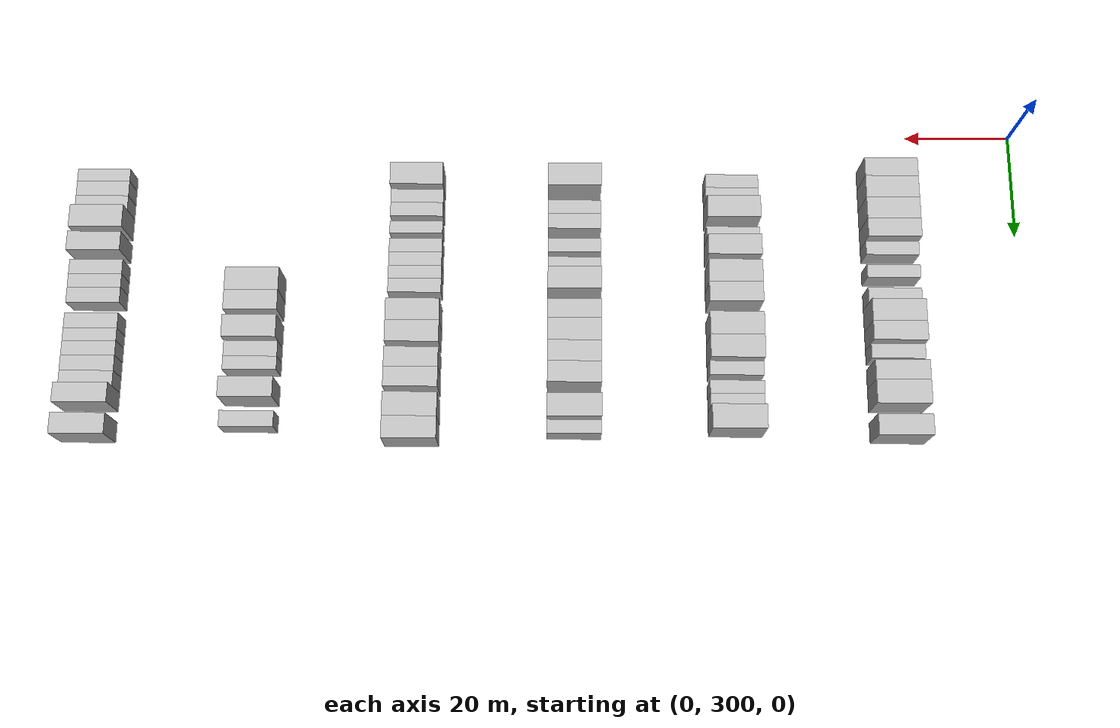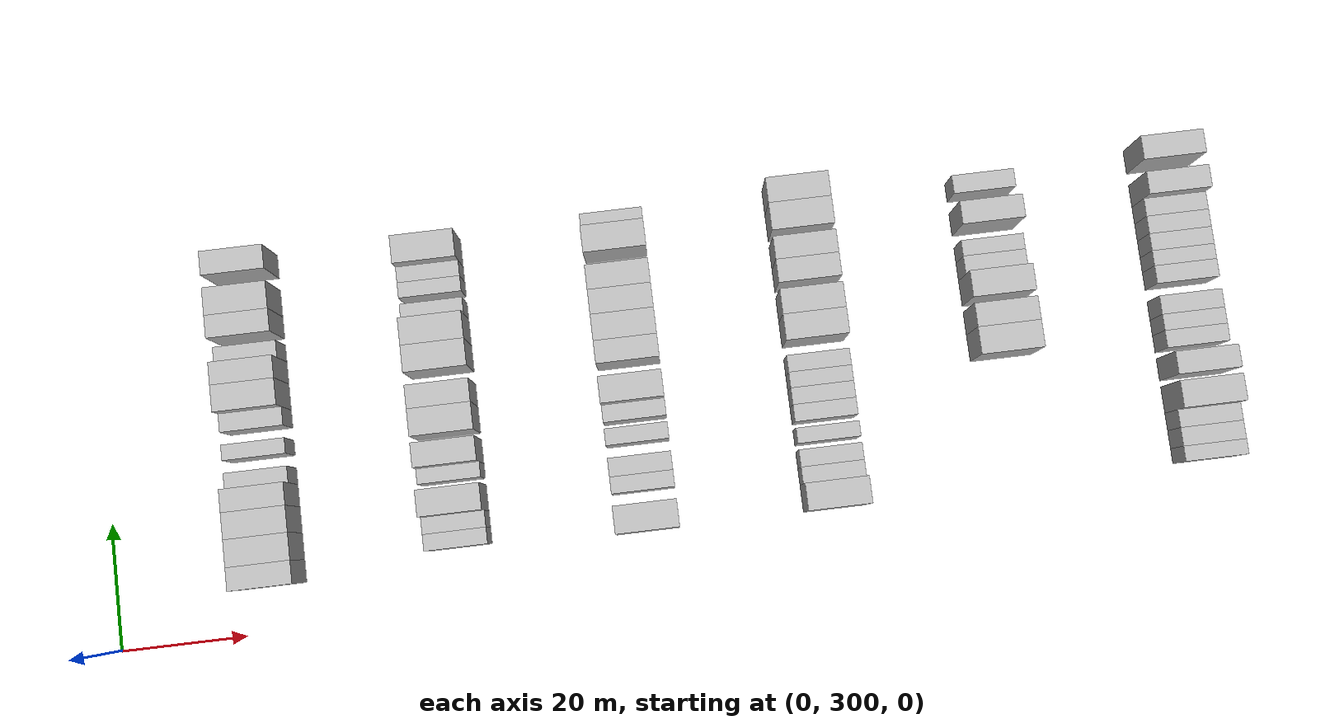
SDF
<sdf version="1.6">
 <world name="default">
  <model name="building_196">
   <static>1</static>
   <pose>25.0000 309.1037 0 0.000000 0.000000 0.000000</pose>
   <link name="link">
    <pose>0 0 4.50 0 0 0</pose>
    <collision name="collision"><geometry><box><size>10.0000 3.6375 9.0000</size></box></geometry></collision>
    <visual name="visual">
     <cast_shadows>0</cast_shadows>
     <geometry><box><size>10.0000 3.6375 9.0000</size></box></geometry>
     <material>
      <script>
       <uri>model://HANNAS_wall/materials/scripts</uri>
       <uri>model://HANNAS_wall/materials/textures</uri>
       <name>vrc/HANNAS_wall</name>
      </script>
     </material>
    </visual>
   </link>
  </model>
  <model name="building_197">
   <static>1</static>
   <pose>25.0000 313.0663 0 0.000000 0.000000 0.000000</pose>
   <link name="link">
    <pose>0 0 4.50 0 0 0</pose>
    <collision name="collision"><geometry><box><size>10.0000 4.2878 9.0000</size></box></geometry></collision>
    <visual name="visual">
     <cast_shadows>0</cast_shadows>
     <geometry><box><size>10.0000 4.2878 9.0000</size></box></geometry>
     <material>
      <script>
       <uri>model://HANNAS_wall/materials/scripts</uri>
       <uri>model://HANNAS_wall/materials/textures</uri>
       <name>vrc/HANNAS_wall</name>
      </script>
     </material>
    </visual>
   </link>
  </model>
  <model name="building_198">
   <static>1</static>
   <pose>25.0000 317.3026 0 0.000000 0.000000 0.000000</pose>
   <link name="link">
    <pose>0 0 4.50 0 0 0</pose>
    <collision name="collision"><geometry><box><size>10.0000 4.1848 9.0000</size></box></geometry></collision>
    <visual name="visual">
     <cast_shadows>0</cast_shadows>
     <geometry><box><size>10.0000 4.1848 9.0000</size></box></geometry>
     <material>
      <script>
       <uri>model://HANNAS_wall/materials/scripts</uri>
       <uri>model://HANNAS_wall/materials/textures</uri>
       <name>vrc/HANNAS_wall</name>
      </script>
     </material>
    </visual>
   </link>
  </model>
  <model name="building_199">
   <static>1</static>
   <pose>25.0000 321.1996 0 0.000000 0.000000 0.000000</pose>
   <link name="link">
    <pose>0 0 4.50 0 0 0</pose>
    <collision name="collision"><geometry><box><size>10.0000 3.6092 9.0000</size></box></geometry></collision>
    <visual name="visual">
     <cast_shadows>0</cast_shadows>
     <geometry><box><size>10.0000 3.6092 9.0000</size></box></geometry>
     <material>
      <script>
       <uri>model://HANNAS_wall/materials/scripts</uri>
       <uri>model://HANNAS_wall/materials/textures</uri>
       <name>vrc/HANNAS_wall</name>
      </script>
     </material>
    </visual>
   </link>
  </model>
  <model name="building_200">
   <static>1</static>
   <pose>25.0000 324.3306 0 0.000000 0.000000 0.000000</pose>
   <link name="link">
    <pose>0 0 3.00 0 0 0</pose>
    <collision name="collision"><geometry><box><size>10.0000 2.6528 6.0000</size></box></geometry></collision>
    <visual name="visual">
     <cast_shadows>0</cast_shadows>
     <geometry><box><size>10.0000 2.6528 6.0000</size></box></geometry>
     <material>
      <script>
       <uri>model://HANNAS_wall/materials/scripts</uri>
       <uri>model://HANNAS_wall/materials/textures</uri>
       <name>vrc/HANNAS_wall</name>
      </script>
     </material>
    </visual>
   </link>
  </model>
  <model name="building_201">
   <static>1</static>
   <pose>25.0000 328.8952 0 0.000000 0.000000 0.000000</pose>
   <link name="link">
    <pose>0 0 3.00 0 0 0</pose>
    <collision name="collision"><geometry><box><size>10.0000 2.4763 6.0000</size></box></geometry></collision>
    <visual name="visual">
     <cast_shadows>0</cast_shadows>
     <geometry><box><size>10.0000 2.4763 6.0000</size></box></geometry>
     <material>
      <script>
       <uri>model://HANNAS_wall/materials/scripts</uri>
       <uri>model://HANNAS_wall/materials/textures</uri>
       <name>vrc/HANNAS_wall</name>
      </script>
     </material>
    </visual>
   </link>
  </model>
  <model name="building_202">
   <static>1</static>
   <pose>25.0000 333.6020 0 0.000000 0.000000 0.000000</pose>
   <link name="link">
    <pose>0 0 3.00 0 0 0</pose>
    <collision name="collision"><geometry><box><size>10.0000 2.9375 6.0000</size></box></geometry></collision>
    <visual name="visual">
     <cast_shadows>0</cast_shadows>
     <geometry><box><size>10.0000 2.9375 6.0000</size></box></geometry>
     <material>
      <script>
       <uri>model://HANNAS_wall/materials/scripts</uri>
       <uri>model://HANNAS_wall/materials/textures</uri>
       <name>vrc/HANNAS_wall</name>
      </script>
     </material>
    </visual>
   </link>
  </model>
  <model name="building_203">
   <static>1</static>
   <pose>25.0000 337.1969 0 0.000000 0.000000 0.000000</pose>
   <link name="link">
    <pose>0 0 4.50 0 0 0</pose>
    <collision name="collision"><geometry><box><size>10.0000 4.2523 9.0000</size></box></geometry></collision>
    <visual name="visual">
     <cast_shadows>0</cast_shadows>
     <geometry><box><size>10.0000 4.2523 9.0000</size></box></geometry>
     <material>
      <script>
       <uri>model://HANNAS_wall/materials/scripts</uri>
       <uri>model://HANNAS_wall/materials/textures</uri>
       <name>vrc/HANNAS_wall</name>
      </script>
     </material>
    </visual>
   </link>
  </model>
  <model name="building_204">
   <static>1</static>
   <pose>25.0000 341.1287 0 0.000000 0.000000 0.000000</pose>
   <link name="link">
    <pose>0 0 4.50 0 0 0</pose>
    <collision name="collision"><geometry><box><size>10.0000 3.6112 9.0000</size></box></geometry></collision>
    <visual name="visual">
     <cast_shadows>0</cast_shadows>
     <geometry><box><size>10.0000 3.6112 9.0000</size></box></geometry>
     <material>
      <script>
       <uri>model://HANNAS_wall/materials/scripts</uri>
       <uri>model://HANNAS_wall/materials/textures</uri>
       <name>vrc/HANNAS_wall</name>
      </script>
     </material>
    </visual>
   </link>
  </model>
  <model name="building_205">
   <static>1</static>
   <pose>25.0000 344.3310 0 0.000000 0.000000 0.000000</pose>
   <link name="link">
    <pose>0 0 3.00 0 0 0</pose>
    <collision name="collision"><geometry><box><size>10.0000 2.7935 6.0000</size></box></geometry></collision>
    <visual name="visual">
     <cast_shadows>0</cast_shadows>
     <geometry><box><size>10.0000 2.7935 6.0000</size></box></geometry>
     <material>
      <script>
       <uri>model://HANNAS_wall/materials/scripts</uri>
       <uri>model://HANNAS_wall/materials/textures</uri>
       <name>vrc/HANNAS_wall</name>
      </script>
     </material>
    </visual>
   </link>
  </model>
  <model name="building_206">
   <static>1</static>
   <pose>25.0000 348.5507 0 0.000000 0.000000 0.000000</pose>
   <link name="link">
    <pose>0 0 4.50 0 0 0</pose>
    <collision name="collision"><geometry><box><size>10.0000 3.6458 9.0000</size></box></geometry></collision>
    <visual name="visual">
     <cast_shadows>0</cast_shadows>
     <geometry><box><size>10.0000 3.6458 9.0000</size></box></geometry>
     <material>
      <script>
       <uri>model://HANNAS_wall/materials/scripts</uri>
       <uri>model://HANNAS_wall/materials/textures</uri>
       <name>vrc/HANNAS_wall</name>
      </script>
     </material>
    </visual>
   </link>
  </model>
  <model name="building_207">
   <static>1</static>
   <pose>25.0000 352.5800 0 0.000000 0.000000 0.000000</pose>
   <link name="link">
    <pose>0 0 4.50 0 0 0</pose>
    <collision name="collision"><geometry><box><size>10.0000 4.4128 9.0000</size></box></geometry></collision>
    <visual name="visual">
     <cast_shadows>0</cast_shadows>
     <geometry><box><size>10.0000 4.4128 9.0000</size></box></geometry>
     <material>
      <script>
       <uri>model://HANNAS_wall/materials/scripts</uri>
       <uri>model://HANNAS_wall/materials/textures</uri>
       <name>vrc/HANNAS_wall</name>
      </script>
     </material>
    </visual>
   </link>
  </model>
  <model name="building_208">
   <static>1</static>
   <pose>25.0000 358.7078 0 0.000000 0.000000 0.000000</pose>
   <link name="link">
    <pose>0 0 4.50 0 0 0</pose>
    <collision name="collision"><geometry><box><size>10.0000 3.8427 9.0000</size></box></geometry></collision>
    <visual name="visual">
     <cast_shadows>0</cast_shadows>
     <geometry><box><size>10.0000 3.8427 9.0000</size></box></geometry>
     <material>
      <script>
       <uri>model://HANNAS_wall/materials/scripts</uri>
       <uri>model://HANNAS_wall/materials/textures</uri>
       <name>vrc/HANNAS_wall</name>
      </script>
     </material>
    </visual>
   </link>
  </model>
  <model name="building_415">
   <static>1</static>
   <pose>55.0000 311.1469 0 0.000000 0.000000 0.000000</pose>
   <link name="link">
    <pose>0 0 3.00 0 0 0</pose>
    <collision name="collision"><geometry><box><size>10.0000 2.6119 6.0000</size></box></geometry></collision>
    <visual name="visual">
     <cast_shadows>0</cast_shadows>
     <geometry><box><size>10.0000 2.6119 6.0000</size></box></geometry>
     <material>
      <script>
       <uri>model://HANNAS_wall/materials/scripts</uri>
       <uri>model://HANNAS_wall/materials/textures</uri>
       <name>vrc/HANNAS_wall</name>
      </script>
     </material>
    </visual>
   </link>
  </model>
  <model name="building_416">
   <static>1</static>
   <pose>55.0000 313.7734 0 0.000000 0.000000 0.000000</pose>
   <link name="link">
    <pose>0 0 3.00 0 0 0</pose>
    <collision name="collision"><geometry><box><size>10.0000 2.6413 6.0000</size></box></geometry></collision>
    <visual name="visual">
     <cast_shadows>0</cast_shadows>
     <geometry><box><size>10.0000 2.6413 6.0000</size></box></geometry>
     <material>
      <script>
       <uri>model://HANNAS_wall/materials/scripts</uri>
       <uri>model://HANNAS_wall/materials/textures</uri>
       <name>vrc/HANNAS_wall</name>
      </script>
     </material>
    </visual>
   </link>
  </model>
  <model name="building_417">
   <static>1</static>
   <pose>55.0000 317.2014 0 0.000000 0.000000 0.000000</pose>
   <link name="link">
    <pose>0 0 4.50 0 0 0</pose>
    <collision name="collision"><geometry><box><size>10.0000 4.2146 9.0000</size></box></geometry></collision>
    <visual name="visual">
     <cast_shadows>0</cast_shadows>
     <geometry><box><size>10.0000 4.2146 9.0000</size></box></geometry>
     <material>
      <script>
       <uri>model://HANNAS_wall/materials/scripts</uri>
       <uri>model://HANNAS_wall/materials/textures</uri>
       <name>vrc/HANNAS_wall</name>
      </script>
     </material>
    </visual>
   </link>
  </model>
  <model name="building_418">
   <static>1</static>
   <pose>55.0000 321.5330 0 0.000000 0.000000 0.000000</pose>
   <link name="link">
    <pose>0 0 3.00 0 0 0</pose>
    <collision name="collision"><geometry><box><size>10.0000 2.4486 6.0000</size></box></geometry></collision>
    <visual name="visual">
     <cast_shadows>0</cast_shadows>
     <geometry><box><size>10.0000 2.4486 6.0000</size></box></geometry>
     <material>
      <script>
       <uri>model://HANNAS_wall/materials/scripts</uri>
       <uri>model://HANNAS_wall/materials/textures</uri>
       <name>vrc/HANNAS_wall</name>
      </script>
     </material>
    </visual>
   </link>
  </model>
  <model name="building_419">
   <static>1</static>
   <pose>55.0000 324.7034 0 0.000000 0.000000 0.000000</pose>
   <link name="link">
    <pose>0 0 4.50 0 0 0</pose>
    <collision name="collision"><geometry><box><size>10.0000 3.8923 9.0000</size></box></geometry></collision>
    <visual name="visual">
     <cast_shadows>0</cast_shadows>
     <geometry><box><size>10.0000 3.8923 9.0000</size></box></geometry>
     <material>
      <script>
       <uri>model://HANNAS_wall/materials/scripts</uri>
       <uri>model://HANNAS_wall/materials/textures</uri>
       <name>vrc/HANNAS_wall</name>
      </script>
     </material>
    </visual>
   </link>
  </model>
  <model name="building_420">
   <static>1</static>
   <pose>55.0000 329.8168 0 0.000000 0.000000 0.000000</pose>
   <link name="link">
    <pose>0 0 4.50 0 0 0</pose>
    <collision name="collision"><geometry><box><size>10.0000 4.3344 9.0000</size></box></geometry></collision>
    <visual name="visual">
     <cast_shadows>0</cast_shadows>
     <geometry><box><size>10.0000 4.3344 9.0000</size></box></geometry>
     <material>
      <script>
       <uri>model://HANNAS_wall/materials/scripts</uri>
       <uri>model://HANNAS_wall/materials/textures</uri>
       <name>vrc/HANNAS_wall</name>
      </script>
     </material>
    </visual>
   </link>
  </model>
  <model name="building_421">
   <static>1</static>
   <pose>55.0000 333.8455 0 0.000000 0.000000 0.000000</pose>
   <link name="link">
    <pose>0 0 4.50 0 0 0</pose>
    <collision name="collision"><geometry><box><size>10.0000 3.7230 9.0000</size></box></geometry></collision>
    <visual name="visual">
     <cast_shadows>0</cast_shadows>
     <geometry><box><size>10.0000 3.7230 9.0000</size></box></geometry>
     <material>
      <script>
       <uri>model://HANNAS_wall/materials/scripts</uri>
       <uri>model://HANNAS_wall/materials/textures</uri>
       <name>vrc/HANNAS_wall</name>
      </script>
     </material>
    </visual>
   </link>
  </model>
  <model name="building_422">
   <static>1</static>
   <pose>55.0000 339.8647 0 0.000000 0.000000 0.000000</pose>
   <link name="link">
    <pose>0 0 4.50 0 0 0</pose>
    <collision name="collision"><geometry><box><size>10.0000 4.3155 9.0000</size></box></geometry></collision>
    <visual name="visual">
     <cast_shadows>0</cast_shadows>
     <geometry><box><size>10.0000 4.3155 9.0000</size></box></geometry>
     <material>
      <script>
       <uri>model://HANNAS_wall/materials/scripts</uri>
       <uri>model://HANNAS_wall/materials/textures</uri>
       <name>vrc/HANNAS_wall</name>
      </script>
     </material>
    </visual>
   </link>
  </model>
  <model name="building_423">
   <static>1</static>
   <pose>55.0000 344.2109 0 0.000000 0.000000 0.000000</pose>
   <link name="link">
    <pose>0 0 4.50 0 0 0</pose>
    <collision name="collision"><geometry><box><size>10.0000 4.3768 9.0000</size></box></geometry></collision>
    <visual name="visual">
     <cast_shadows>0</cast_shadows>
     <geometry><box><size>10.0000 4.3768 9.0000</size></box></geometry>
     <material>
      <script>
       <uri>model://HANNAS_wall/materials/scripts</uri>
       <uri>model://HANNAS_wall/materials/textures</uri>
       <name>vrc/HANNAS_wall</name>
      </script>
     </material>
    </visual>
   </link>
  </model>
  <model name="building_424">
   <static>1</static>
   <pose>55.0000 347.7344 0 0.000000 0.000000 0.000000</pose>
   <link name="link">
    <pose>0 0 3.00 0 0 0</pose>
    <collision name="collision"><geometry><box><size>10.0000 2.6702 6.0000</size></box></geometry></collision>
    <visual name="visual">
     <cast_shadows>0</cast_shadows>
     <geometry><box><size>10.0000 2.6702 6.0000</size></box></geometry>
     <material>
      <script>
       <uri>model://HANNAS_wall/materials/scripts</uri>
       <uri>model://HANNAS_wall/materials/textures</uri>
       <name>vrc/HANNAS_wall</name>
      </script>
     </material>
    </visual>
   </link>
  </model>
  <model name="building_425">
   <static>1</static>
   <pose>55.0000 351.3104 0 0.000000 0.000000 0.000000</pose>
   <link name="link">
    <pose>0 0 3.00 0 0 0</pose>
    <collision name="collision"><geometry><box><size>10.0000 2.4818 6.0000</size></box></geometry></collision>
    <visual name="visual">
     <cast_shadows>0</cast_shadows>
     <geometry><box><size>10.0000 2.4818 6.0000</size></box></geometry>
     <material>
      <script>
       <uri>model://HANNAS_wall/materials/scripts</uri>
       <uri>model://HANNAS_wall/materials/textures</uri>
       <name>vrc/HANNAS_wall</name>
      </script>
     </material>
    </visual>
   </link>
  </model>
  <model name="building_426">
   <static>1</static>
   <pose>55.0000 353.8293 0 0.000000 0.000000 0.000000</pose>
   <link name="link">
    <pose>0 0 3.00 0 0 0</pose>
    <collision name="collision"><geometry><box><size>10.0000 2.5561 6.0000</size></box></geometry></collision>
    <visual name="visual">
     <cast_shadows>0</cast_shadows>
     <geometry><box><size>10.0000 2.5561 6.0000</size></box></geometry>
     <material>
      <script>
       <uri>model://HANNAS_wall/materials/scripts</uri>
       <uri>model://HANNAS_wall/materials/textures</uri>
       <name>vrc/HANNAS_wall</name>
      </script>
     </material>
    </visual>
   </link>
  </model>
  <model name="building_427">
   <static>1</static>
   <pose>55.0000 357.3418 0 0.000000 0.000000 0.000000</pose>
   <link name="link">
    <pose>0 0 4.50 0 0 0</pose>
    <collision name="collision"><geometry><box><size>10.0000 4.4689 9.0000</size></box></geometry></collision>
    <visual name="visual">
     <cast_shadows>0</cast_shadows>
     <geometry><box><size>10.0000 4.4689 9.0000</size></box></geometry>
     <material>
      <script>
       <uri>model://HANNAS_wall/materials/scripts</uri>
       <uri>model://HANNAS_wall/materials/textures</uri>
       <name>vrc/HANNAS_wall</name>
      </script>
     </material>
    </visual>
   </link>
  </model>
  <model name="building_638">
   <static>1</static>
   <pose>85.0000 311.0110 0 0.000000 0.000000 0.000000</pose>
   <link name="link">
    <pose>0 0 4.50 0 0 0</pose>
    <collision name="collision"><geometry><box><size>10.0000 4.3673 9.0000</size></box></geometry></collision>
    <visual name="visual">
     <cast_shadows>0</cast_shadows>
     <geometry><box><size>10.0000 4.3673 9.0000</size></box></geometry>
     <material>
      <script>
       <uri>model://HANNAS_wall/materials/scripts</uri>
       <uri>model://HANNAS_wall/materials/textures</uri>
       <name>vrc/HANNAS_wall</name>
      </script>
     </material>
    </visual>
   </link>
  </model>
  <model name="building_639">
   <static>1</static>
   <pose>85.0000 316.5283 0 0.000000 0.000000 0.000000</pose>
   <link name="link">
    <pose>0 0 3.00 0 0 0</pose>
    <collision name="collision"><geometry><box><size>10.0000 2.6672 6.0000</size></box></geometry></collision>
    <visual name="visual">
     <cast_shadows>0</cast_shadows>
     <geometry><box><size>10.0000 2.6672 6.0000</size></box></geometry>
     <material>
      <script>
       <uri>model://HANNAS_wall/materials/scripts</uri>
       <uri>model://HANNAS_wall/materials/textures</uri>
       <name>vrc/HANNAS_wall</name>
      </script>
     </material>
    </visual>
   </link>
  </model>
  <model name="building_640">
   <static>1</static>
   <pose>85.0000 319.3429 0 0.000000 0.000000 0.000000</pose>
   <link name="link">
    <pose>0 0 3.00 0 0 0</pose>
    <collision name="collision"><geometry><box><size>10.0000 2.9620 6.0000</size></box></geometry></collision>
    <visual name="visual">
     <cast_shadows>0</cast_shadows>
     <geometry><box><size>10.0000 2.9620 6.0000</size></box></geometry>
     <material>
      <script>
       <uri>model://HANNAS_wall/materials/scripts</uri>
       <uri>model://HANNAS_wall/materials/textures</uri>
       <name>vrc/HANNAS_wall</name>
      </script>
     </material>
    </visual>
   </link>
  </model>
  <model name="building_641">
   <static>1</static>
   <pose>85.0000 324.1539 0 0.000000 0.000000 0.000000</pose>
   <link name="link">
    <pose>0 0 3.00 0 0 0</pose>
    <collision name="collision"><geometry><box><size>10.0000 2.6599 6.0000</size></box></geometry></collision>
    <visual name="visual">
     <cast_shadows>0</cast_shadows>
     <geometry><box><size>10.0000 2.6599 6.0000</size></box></geometry>
     <material>
      <script>
       <uri>model://HANNAS_wall/materials/scripts</uri>
       <uri>model://HANNAS_wall/materials/textures</uri>
       <name>vrc/HANNAS_wall</name>
      </script>
     </material>
    </visual>
   </link>
  </model>
  <model name="building_642">
   <static>1</static>
   <pose>85.0000 327.8646 0 0.000000 0.000000 0.000000</pose>
   <link name="link">
    <pose>0 0 3.00 0 0 0</pose>
    <collision name="collision"><geometry><box><size>10.0000 2.7614 6.0000</size></box></geometry></collision>
    <visual name="visual">
     <cast_shadows>0</cast_shadows>
     <geometry><box><size>10.0000 2.7614 6.0000</size></box></geometry>
     <material>
      <script>
       <uri>model://HANNAS_wall/materials/scripts</uri>
       <uri>model://HANNAS_wall/materials/textures</uri>
       <name>vrc/HANNAS_wall</name>
      </script>
     </material>
    </visual>
   </link>
  </model>
  <model name="building_643">
   <static>1</static>
   <pose>85.0000 331.3703 0 0.000000 0.000000 0.000000</pose>
   <link name="link">
    <pose>0 0 4.50 0 0 0</pose>
    <collision name="collision"><geometry><box><size>10.0000 4.2501 9.0000</size></box></geometry></collision>
    <visual name="visual">
     <cast_shadows>0</cast_shadows>
     <geometry><box><size>10.0000 4.2501 9.0000</size></box></geometry>
     <material>
      <script>
       <uri>model://HANNAS_wall/materials/scripts</uri>
       <uri>model://HANNAS_wall/materials/textures</uri>
       <name>vrc/HANNAS_wall</name>
      </script>
     </material>
    </visual>
   </link>
  </model>
  <model name="building_644">
   <static>1</static>
   <pose>85.0000 337.3200 0 0.000000 0.000000 0.000000</pose>
   <link name="link">
    <pose>0 0 4.50 0 0 0</pose>
    <collision name="collision"><geometry><box><size>10.0000 3.6491 9.0000</size></box></geometry></collision>
    <visual name="visual">
     <cast_shadows>0</cast_shadows>
     <geometry><box><size>10.0000 3.6491 9.0000</size></box></geometry>
     <material>
      <script>
       <uri>model://HANNAS_wall/materials/scripts</uri>
       <uri>model://HANNAS_wall/materials/textures</uri>
       <name>vrc/HANNAS_wall</name>
      </script>
     </material>
    </visual>
   </link>
  </model>
  <model name="building_645">
   <static>1</static>
   <pose>85.0000 341.2414 0 0.000000 0.000000 0.000000</pose>
   <link name="link">
    <pose>0 0 4.50 0 0 0</pose>
    <collision name="collision"><geometry><box><size>10.0000 4.1939 9.0000</size></box></geometry></collision>
    <visual name="visual">
     <cast_shadows>0</cast_shadows>
     <geometry><box><size>10.0000 4.1939 9.0000</size></box></geometry>
     <material>
      <script>
       <uri>model://HANNAS_wall/materials/scripts</uri>
       <uri>model://HANNAS_wall/materials/textures</uri>
       <name>vrc/HANNAS_wall</name>
      </script>
     </material>
    </visual>
   </link>
  </model>
  <model name="building_646">
   <static>1</static>
   <pose>85.0000 345.3181 0 0.000000 0.000000 0.000000</pose>
   <link name="link">
    <pose>0 0 4.50 0 0 0</pose>
    <collision name="collision"><geometry><box><size>10.0000 3.9594 9.0000</size></box></geometry></collision>
    <visual name="visual">
     <cast_shadows>0</cast_shadows>
     <geometry><box><size>10.0000 3.9594 9.0000</size></box></geometry>
     <material>
      <script>
       <uri>model://HANNAS_wall/materials/scripts</uri>
       <uri>model://HANNAS_wall/materials/textures</uri>
       <name>vrc/HANNAS_wall</name>
      </script>
     </material>
    </visual>
   </link>
  </model>
  <model name="building_647">
   <static>1</static>
   <pose>85.0000 349.2757 0 0.000000 0.000000 0.000000</pose>
   <link name="link">
    <pose>0 0 4.50 0 0 0</pose>
    <collision name="collision"><geometry><box><size>10.0000 3.9559 9.0000</size></box></geometry></collision>
    <visual name="visual">
     <cast_shadows>0</cast_shadows>
     <geometry><box><size>10.0000 3.9559 9.0000</size></box></geometry>
     <material>
      <script>
       <uri>model://HANNAS_wall/materials/scripts</uri>
       <uri>model://HANNAS_wall/materials/textures</uri>
       <name>vrc/HANNAS_wall</name>
      </script>
     </material>
    </visual>
   </link>
  </model>
  <model name="building_648">
   <static>1</static>
   <pose>85.0000 355.4358 0 0.000000 0.000000 0.000000</pose>
   <link name="link">
    <pose>0 0 4.50 0 0 0</pose>
    <collision name="collision"><geometry><box><size>10.0000 4.3643 9.0000</size></box></geometry></collision>
    <visual name="visual">
     <cast_shadows>0</cast_shadows>
     <geometry><box><size>10.0000 4.3643 9.0000</size></box></geometry>
     <material>
      <script>
       <uri>model://HANNAS_wall/materials/scripts</uri>
       <uri>model://HANNAS_wall/materials/textures</uri>
       <name>vrc/HANNAS_wall</name>
      </script>
     </material>
    </visual>
   </link>
  </model>
  <model name="building_649">
   <static>1</static>
   <pose>85.0000 358.9013 0 0.000000 0.000000 0.000000</pose>
   <link name="link">
    <pose>0 0 3.00 0 0 0</pose>
    <collision name="collision"><geometry><box><size>10.0000 2.5667 6.0000</size></box></geometry></collision>
    <visual name="visual">
     <cast_shadows>0</cast_shadows>
     <geometry><box><size>10.0000 2.5667 6.0000</size></box></geometry>
     <material>
      <script>
       <uri>model://HANNAS_wall/materials/scripts</uri>
       <uri>model://HANNAS_wall/materials/textures</uri>
       <name>vrc/HANNAS_wall</name>
      </script>
     </material>
    </visual>
   </link>
  </model>
  <model name="building_862">
   <static>1</static>
   <pose>115.0000 311.0098 0 0.000000 0.000000 0.000000</pose>
   <link name="link">
    <pose>0 0 4.50 0 0 0</pose>
    <collision name="collision"><geometry><box><size>10.0000 4.2972 9.0000</size></box></geometry></collision>
    <visual name="visual">
     <cast_shadows>0</cast_shadows>
     <geometry><box><size>10.0000 4.2972 9.0000</size></box></geometry>
     <material>
      <script>
       <uri>model://HANNAS_wall/materials/scripts</uri>
       <uri>model://HANNAS_wall/materials/textures</uri>
       <name>vrc/HANNAS_wall</name>
      </script>
     </material>
    </visual>
   </link>
  </model>
  <model name="building_863">
   <static>1</static>
   <pose>115.0000 314.5016 0 0.000000 0.000000 0.000000</pose>
   <link name="link">
    <pose>0 0 3.00 0 0 0</pose>
    <collision name="collision"><geometry><box><size>10.0000 2.6865 6.0000</size></box></geometry></collision>
    <visual name="visual">
     <cast_shadows>0</cast_shadows>
     <geometry><box><size>10.0000 2.6865 6.0000</size></box></geometry>
     <material>
      <script>
       <uri>model://HANNAS_wall/materials/scripts</uri>
       <uri>model://HANNAS_wall/materials/textures</uri>
       <name>vrc/HANNAS_wall</name>
      </script>
     </material>
    </visual>
   </link>
  </model>
  <model name="building_864">
   <static>1</static>
   <pose>115.0000 317.2058 0 0.000000 0.000000 0.000000</pose>
   <link name="link">
    <pose>0 0 3.00 0 0 0</pose>
    <collision name="collision"><geometry><box><size>10.0000 2.7219 6.0000</size></box></geometry></collision>
    <visual name="visual">
     <cast_shadows>0</cast_shadows>
     <geometry><box><size>10.0000 2.7219 6.0000</size></box></geometry>
     <material>
      <script>
       <uri>model://HANNAS_wall/materials/scripts</uri>
       <uri>model://HANNAS_wall/materials/textures</uri>
       <name>vrc/HANNAS_wall</name>
      </script>
     </material>
    </visual>
   </link>
  </model>
  <model name="building_865">
   <static>1</static>
   <pose>115.0000 320.7853 0 0.000000 0.000000 0.000000</pose>
   <link name="link">
    <pose>0 0 3.00 0 0 0</pose>
    <collision name="collision"><geometry><box><size>10.0000 2.4371 6.0000</size></box></geometry></collision>
    <visual name="visual">
     <cast_shadows>0</cast_shadows>
     <geometry><box><size>10.0000 2.4371 6.0000</size></box></geometry>
     <material>
      <script>
       <uri>model://HANNAS_wall/materials/scripts</uri>
       <uri>model://HANNAS_wall/materials/textures</uri>
       <name>vrc/HANNAS_wall</name>
      </script>
     </material>
    </visual>
   </link>
  </model>
  <model name="building_866">
   <static>1</static>
   <pose>115.0000 324.3734 0 0.000000 0.000000 0.000000</pose>
   <link name="link">
    <pose>0 0 3.00 0 0 0</pose>
    <collision name="collision"><geometry><box><size>10.0000 2.7392 6.0000</size></box></geometry></collision>
    <visual name="visual">
     <cast_shadows>0</cast_shadows>
     <geometry><box><size>10.0000 2.7392 6.0000</size></box></geometry>
     <material>
      <script>
       <uri>model://HANNAS_wall/materials/scripts</uri>
       <uri>model://HANNAS_wall/materials/textures</uri>
       <name>vrc/HANNAS_wall</name>
      </script>
     </material>
    </visual>
   </link>
  </model>
  <model name="building_867">
   <static>1</static>
   <pose>115.0000 327.0790 0 0.000000 0.000000 0.000000</pose>
   <link name="link">
    <pose>0 0 3.00 0 0 0</pose>
    <collision name="collision"><geometry><box><size>10.0000 2.6720 6.0000</size></box></geometry></collision>
    <visual name="visual">
     <cast_shadows>0</cast_shadows>
     <geometry><box><size>10.0000 2.6720 6.0000</size></box></geometry>
     <material>
      <script>
       <uri>model://HANNAS_wall/materials/scripts</uri>
       <uri>model://HANNAS_wall/materials/textures</uri>
       <name>vrc/HANNAS_wall</name>
      </script>
     </material>
    </visual>
   </link>
  </model>
  <model name="building_868">
   <static>1</static>
   <pose>115.0000 329.6733 0 0.000000 0.000000 0.000000</pose>
   <link name="link">
    <pose>0 0 3.00 0 0 0</pose>
    <collision name="collision"><geometry><box><size>10.0000 2.5166 6.0000</size></box></geometry></collision>
    <visual name="visual">
     <cast_shadows>0</cast_shadows>
     <geometry><box><size>10.0000 2.5166 6.0000</size></box></geometry>
     <material>
      <script>
       <uri>model://HANNAS_wall/materials/scripts</uri>
       <uri>model://HANNAS_wall/materials/textures</uri>
       <name>vrc/HANNAS_wall</name>
      </script>
     </material>
    </visual>
   </link>
  </model>
  <model name="building_869">
   <static>1</static>
   <pose>115.0000 332.2695 0 0.000000 0.000000 0.000000</pose>
   <link name="link">
    <pose>0 0 3.00 0 0 0</pose>
    <collision name="collision"><geometry><box><size>10.0000 2.6759 6.0000</size></box></geometry></collision>
    <visual name="visual">
     <cast_shadows>0</cast_shadows>
     <geometry><box><size>10.0000 2.6759 6.0000</size></box></geometry>
     <material>
      <script>
       <uri>model://HANNAS_wall/materials/scripts</uri>
       <uri>model://HANNAS_wall/materials/textures</uri>
       <name>vrc/HANNAS_wall</name>
      </script>
     </material>
    </visual>
   </link>
  </model>
  <model name="building_870">
   <static>1</static>
   <pose>115.0000 337.6904 0 0.000000 0.000000 0.000000</pose>
   <link name="link">
    <pose>0 0 4.50 0 0 0</pose>
    <collision name="collision"><geometry><box><size>10.0000 4.1659 9.0000</size></box></geometry></collision>
    <visual name="visual">
     <cast_shadows>0</cast_shadows>
     <geometry><box><size>10.0000 4.1659 9.0000</size></box></geometry>
     <material>
      <script>
       <uri>model://HANNAS_wall/materials/scripts</uri>
       <uri>model://HANNAS_wall/materials/textures</uri>
       <name>vrc/HANNAS_wall</name>
      </script>
     </material>
    </visual>
   </link>
  </model>
  <model name="building_871">
   <static>1</static>
   <pose>115.0000 341.7952 0 0.000000 0.000000 0.000000</pose>
   <link name="link">
    <pose>0 0 4.50 0 0 0</pose>
    <collision name="collision"><geometry><box><size>10.0000 4.0436 9.0000</size></box></geometry></collision>
    <visual name="visual">
     <cast_shadows>0</cast_shadows>
     <geometry><box><size>10.0000 4.0436 9.0000</size></box></geometry>
     <material>
      <script>
       <uri>model://HANNAS_wall/materials/scripts</uri>
       <uri>model://HANNAS_wall/materials/textures</uri>
       <name>vrc/HANNAS_wall</name>
      </script>
     </material>
    </visual>
   </link>
  </model>
  <model name="building_872">
   <static>1</static>
   <pose>115.0000 346.6855 0 0.000000 0.000000 0.000000</pose>
   <link name="link">
    <pose>0 0 4.50 0 0 0</pose>
    <collision name="collision"><geometry><box><size>10.0000 3.7369 9.0000</size></box></geometry></collision>
    <visual name="visual">
     <cast_shadows>0</cast_shadows>
     <geometry><box><size>10.0000 3.7369 9.0000</size></box></geometry>
     <material>
      <script>
       <uri>model://HANNAS_wall/materials/scripts</uri>
       <uri>model://HANNAS_wall/materials/textures</uri>
       <name>vrc/HANNAS_wall</name>
      </script>
     </material>
    </visual>
   </link>
  </model>
  <model name="building_873">
   <static>1</static>
   <pose>115.0000 350.4074 0 0.000000 0.000000 0.000000</pose>
   <link name="link">
    <pose>0 0 4.50 0 0 0</pose>
    <collision name="collision"><geometry><box><size>10.0000 3.7070 9.0000</size></box></geometry></collision>
    <visual name="visual">
     <cast_shadows>0</cast_shadows>
     <geometry><box><size>10.0000 3.7070 9.0000</size></box></geometry>
     <material>
      <script>
       <uri>model://HANNAS_wall/materials/scripts</uri>
       <uri>model://HANNAS_wall/materials/textures</uri>
       <name>vrc/HANNAS_wall</name>
      </script>
     </material>
    </visual>
   </link>
  </model>
  <model name="building_874">
   <static>1</static>
   <pose>115.0000 355.4825 0 0.000000 0.000000 0.000000</pose>
   <link name="link">
    <pose>0 0 4.50 0 0 0</pose>
    <collision name="collision"><geometry><box><size>10.0000 4.4432 9.0000</size></box></geometry></collision>
    <visual name="visual">
     <cast_shadows>0</cast_shadows>
     <geometry><box><size>10.0000 4.4432 9.0000</size></box></geometry>
     <material>
      <script>
       <uri>model://HANNAS_wall/materials/scripts</uri>
       <uri>model://HANNAS_wall/materials/textures</uri>
       <name>vrc/HANNAS_wall</name>
      </script>
     </material>
    </visual>
   </link>
  </model>
  <model name="building_875">
   <static>1</static>
   <pose>115.0000 359.7367 0 0.000000 0.000000 0.000000</pose>
   <link name="link">
    <pose>0 0 4.50 0 0 0</pose>
    <collision name="collision"><geometry><box><size>10.0000 4.0652 9.0000</size></box></geometry></collision>
    <visual name="visual">
     <cast_shadows>0</cast_shadows>
     <geometry><box><size>10.0000 4.0652 9.0000</size></box></geometry>
     <material>
      <script>
       <uri>model://HANNAS_wall/materials/scripts</uri>
       <uri>model://HANNAS_wall/materials/textures</uri>
       <name>vrc/HANNAS_wall</name>
      </script>
     </material>
    </visual>
   </link>
  </model>
  <model name="building_1077">
   <static>1</static>
   <pose>145.0000 331.9522 0 0.000000 0.000000 0.000000</pose>
   <link name="link">
    <pose>0 0 4.50 0 0 0</pose>
    <collision name="collision"><geometry><box><size>10.0000 4.3610 9.0000</size></box></geometry></collision>
    <visual name="visual">
     <cast_shadows>0</cast_shadows>
     <geometry><box><size>10.0000 4.3610 9.0000</size></box></geometry>
     <material>
      <script>
       <uri>model://HANNAS_wall/materials/scripts</uri>
       <uri>model://HANNAS_wall/materials/textures</uri>
       <name>vrc/HANNAS_wall</name>
      </script>
     </material>
    </visual>
   </link>
  </model>
  <model name="building_1078">
   <static>1</static>
   <pose>145.0000 336.0199 0 0.000000 0.000000 0.000000</pose>
   <link name="link">
    <pose>0 0 4.50 0 0 0</pose>
    <collision name="collision"><geometry><box><size>10.0000 3.7745 9.0000</size></box></geometry></collision>
    <visual name="visual">
     <cast_shadows>0</cast_shadows>
     <geometry><box><size>10.0000 3.7745 9.0000</size></box></geometry>
     <material>
      <script>
       <uri>model://HANNAS_wall/materials/scripts</uri>
       <uri>model://HANNAS_wall/materials/textures</uri>
       <name>vrc/HANNAS_wall</name>
      </script>
     </material>
    </visual>
   </link>
  </model>
  <model name="building_1079">
   <static>1</static>
   <pose>145.0000 341.0188 0 0.000000 0.000000 0.000000</pose>
   <link name="link">
    <pose>0 0 4.50 0 0 0</pose>
    <collision name="collision"><geometry><box><size>10.0000 4.2233 9.0000</size></box></geometry></collision>
    <visual name="visual">
     <cast_shadows>0</cast_shadows>
     <geometry><box><size>10.0000 4.2233 9.0000</size></box></geometry>
     <material>
      <script>
       <uri>model://HANNAS_wall/materials/scripts</uri>
       <uri>model://HANNAS_wall/materials/textures</uri>
       <name>vrc/HANNAS_wall</name>
      </script>
     </material>
    </visual>
   </link>
  </model>
  <model name="building_1080">
   <static>1</static>
   <pose>145.0000 344.6107 0 0.000000 0.000000 0.000000</pose>
   <link name="link">
    <pose>0 0 3.00 0 0 0</pose>
    <collision name="collision"><geometry><box><size>10.0000 2.9604 6.0000</size></box></geometry></collision>
    <visual name="visual">
     <cast_shadows>0</cast_shadows>
     <geometry><box><size>10.0000 2.9604 6.0000</size></box></geometry>
     <material>
      <script>
       <uri>model://HANNAS_wall/materials/scripts</uri>
       <uri>model://HANNAS_wall/materials/textures</uri>
       <name>vrc/HANNAS_wall</name>
      </script>
     </material>
    </visual>
   </link>
  </model>
  <model name="building_1081">
   <static>1</static>
   <pose>145.0000 347.3581 0 0.000000 0.000000 0.000000</pose>
   <link name="link">
    <pose>0 0 3.00 0 0 0</pose>
    <collision name="collision"><geometry><box><size>10.0000 2.5346 6.0000</size></box></geometry></collision>
    <visual name="visual">
     <cast_shadows>0</cast_shadows>
     <geometry><box><size>10.0000 2.5346 6.0000</size></box></geometry>
     <material>
      <script>
       <uri>model://HANNAS_wall/materials/scripts</uri>
       <uri>model://HANNAS_wall/materials/textures</uri>
       <name>vrc/HANNAS_wall</name>
      </script>
     </material>
    </visual>
   </link>
  </model>
  <model name="building_1082">
   <static>1</static>
   <pose>145.0000 352.4806 0 0.000000 0.000000 0.000000</pose>
   <link name="link">
    <pose>0 0 4.50 0 0 0</pose>
    <collision name="collision"><geometry><box><size>10.0000 3.7104 9.0000</size></box></geometry></collision>
    <visual name="visual">
     <cast_shadows>0</cast_shadows>
     <geometry><box><size>10.0000 3.7104 9.0000</size></box></geometry>
     <material>
      <script>
       <uri>model://HANNAS_wall/materials/scripts</uri>
       <uri>model://HANNAS_wall/materials/textures</uri>
       <name>vrc/HANNAS_wall</name>
      </script>
     </material>
    </visual>
   </link>
  </model>
  <model name="building_1083">
   <static>1</static>
   <pose>145.0000 357.8153 0 0.000000 0.000000 0.000000</pose>
   <link name="link">
    <pose>0 0 3.00 0 0 0</pose>
    <collision name="collision"><geometry><box><size>10.0000 2.9588 6.0000</size></box></geometry></collision>
    <visual name="visual">
     <cast_shadows>0</cast_shadows>
     <geometry><box><size>10.0000 2.9588 6.0000</size></box></geometry>
     <material>
      <script>
       <uri>model://HANNAS_wall/materials/scripts</uri>
       <uri>model://HANNAS_wall/materials/textures</uri>
       <name>vrc/HANNAS_wall</name>
      </script>
     </material>
    </visual>
   </link>
  </model>
  <model name="building_1299">
   <static>1</static>
   <pose>175.0000 310.7167 0 0.000000 0.000000 0.000000</pose>
   <link name="link">
    <pose>0 0 3.00 0 0 0</pose>
    <collision name="collision"><geometry><box><size>10.0000 2.4331 6.0000</size></box></geometry></collision>
    <visual name="visual">
     <cast_shadows>0</cast_shadows>
     <geometry><box><size>10.0000 2.4331 6.0000</size></box></geometry>
     <material>
      <script>
       <uri>model://HANNAS_wall/materials/scripts</uri>
       <uri>model://HANNAS_wall/materials/textures</uri>
       <name>vrc/HANNAS_wall</name>
      </script>
     </material>
    </visual>
   </link>
  </model>
  <model name="building_1300">
   <static>1</static>
   <pose>175.0000 313.4046 0 0.000000 0.000000 0.000000</pose>
   <link name="link">
    <pose>0 0 3.00 0 0 0</pose>
    <collision name="collision"><geometry><box><size>10.0000 2.9427 6.0000</size></box></geometry></collision>
    <visual name="visual">
     <cast_shadows>0</cast_shadows>
     <geometry><box><size>10.0000 2.9427 6.0000</size></box></geometry>
     <material>
      <script>
       <uri>model://HANNAS_wall/materials/scripts</uri>
       <uri>model://HANNAS_wall/materials/textures</uri>
       <name>vrc/HANNAS_wall</name>
      </script>
     </material>
    </visual>
   </link>
  </model>
  <model name="building_1301">
   <static>1</static>
   <pose>175.0000 316.2995 0 0.000000 0.000000 0.000000</pose>
   <link name="link">
    <pose>0 0 3.00 0 0 0</pose>
    <collision name="collision"><geometry><box><size>10.0000 2.8471 6.0000</size></box></geometry></collision>
    <visual name="visual">
     <cast_shadows>0</cast_shadows>
     <geometry><box><size>10.0000 2.8471 6.0000</size></box></geometry>
     <material>
      <script>
       <uri>model://HANNAS_wall/materials/scripts</uri>
       <uri>model://HANNAS_wall/materials/textures</uri>
       <name>vrc/HANNAS_wall</name>
      </script>
     </material>
    </visual>
   </link>
  </model>
  <model name="building_1302">
   <static>1</static>
   <pose>175.0000 319.8668 0 0.000000 0.000000 0.000000</pose>
   <link name="link">
    <pose>0 0 4.50 0 0 0</pose>
    <collision name="collision"><geometry><box><size>10.0000 4.2875 9.0000</size></box></geometry></collision>
    <visual name="visual">
     <cast_shadows>0</cast_shadows>
     <geometry><box><size>10.0000 4.2875 9.0000</size></box></geometry>
     <material>
      <script>
       <uri>model://HANNAS_wall/materials/scripts</uri>
       <uri>model://HANNAS_wall/materials/textures</uri>
       <name>vrc/HANNAS_wall</name>
      </script>
     </material>
    </visual>
   </link>
  </model>
  <model name="building_1303">
   <static>1</static>
   <pose>175.0000 324.8165 0 0.000000 0.000000 0.000000</pose>
   <link name="link">
    <pose>0 0 4.50 0 0 0</pose>
    <collision name="collision"><geometry><box><size>10.0000 3.6119 9.0000</size></box></geometry></collision>
    <visual name="visual">
     <cast_shadows>0</cast_shadows>
     <geometry><box><size>10.0000 3.6119 9.0000</size></box></geometry>
     <material>
      <script>
       <uri>model://HANNAS_wall/materials/scripts</uri>
       <uri>model://HANNAS_wall/materials/textures</uri>
       <name>vrc/HANNAS_wall</name>
      </script>
     </material>
    </visual>
   </link>
  </model>
  <model name="building_1304">
   <static>1</static>
   <pose>175.0000 329.0185 0 0.000000 0.000000 0.000000</pose>
   <link name="link">
    <pose>0 0 3.00 0 0 0</pose>
    <collision name="collision"><geometry><box><size>10.0000 2.7922 6.0000</size></box></geometry></collision>
    <visual name="visual">
     <cast_shadows>0</cast_shadows>
     <geometry><box><size>10.0000 2.7922 6.0000</size></box></geometry>
     <material>
      <script>
       <uri>model://HANNAS_wall/materials/scripts</uri>
       <uri>model://HANNAS_wall/materials/textures</uri>
       <name>vrc/HANNAS_wall</name>
      </script>
     </material>
    </visual>
   </link>
  </model>
  <model name="building_1305">
   <static>1</static>
   <pose>175.0000 331.7169 0 0.000000 0.000000 0.000000</pose>
   <link name="link">
    <pose>0 0 3.00 0 0 0</pose>
    <collision name="collision"><geometry><box><size>10.0000 2.6045 6.0000</size></box></geometry></collision>
    <visual name="visual">
     <cast_shadows>0</cast_shadows>
     <geometry><box><size>10.0000 2.6045 6.0000</size></box></geometry>
     <material>
      <script>
       <uri>model://HANNAS_wall/materials/scripts</uri>
       <uri>model://HANNAS_wall/materials/textures</uri>
       <name>vrc/HANNAS_wall</name>
      </script>
     </material>
    </visual>
   </link>
  </model>
  <model name="building_1306">
   <static>1</static>
   <pose>175.0000 334.5120 0 0.000000 0.000000 0.000000</pose>
   <link name="link">
    <pose>0 0 3.00 0 0 0</pose>
    <collision name="collision"><geometry><box><size>10.0000 2.9858 6.0000</size></box></geometry></collision>
    <visual name="visual">
     <cast_shadows>0</cast_shadows>
     <geometry><box><size>10.0000 2.9858 6.0000</size></box></geometry>
     <material>
      <script>
       <uri>model://HANNAS_wall/materials/scripts</uri>
       <uri>model://HANNAS_wall/materials/textures</uri>
       <name>vrc/HANNAS_wall</name>
      </script>
     </material>
    </visual>
   </link>
  </model>
  <model name="building_1307">
   <static>1</static>
   <pose>175.0000 339.4504 0 0.000000 0.000000 0.000000</pose>
   <link name="link">
    <pose>0 0 3.00 0 0 0</pose>
    <collision name="collision"><geometry><box><size>10.0000 2.8910 6.0000</size></box></geometry></collision>
    <visual name="visual">
     <cast_shadows>0</cast_shadows>
     <geometry><box><size>10.0000 2.8910 6.0000</size></box></geometry>
     <material>
      <script>
       <uri>model://HANNAS_wall/materials/scripts</uri>
       <uri>model://HANNAS_wall/materials/textures</uri>
       <name>vrc/HANNAS_wall</name>
      </script>
     </material>
    </visual>
   </link>
  </model>
  <model name="building_1308">
   <static>1</static>
   <pose>175.0000 342.1286 0 0.000000 0.000000 0.000000</pose>
   <link name="link">
    <pose>0 0 3.00 0 0 0</pose>
    <collision name="collision"><geometry><box><size>10.0000 2.4654 6.0000</size></box></geometry></collision>
    <visual name="visual">
     <cast_shadows>0</cast_shadows>
     <geometry><box><size>10.0000 2.4654 6.0000</size></box></geometry>
     <material>
      <script>
       <uri>model://HANNAS_wall/materials/scripts</uri>
       <uri>model://HANNAS_wall/materials/textures</uri>
       <name>vrc/HANNAS_wall</name>
      </script>
     </material>
    </visual>
   </link>
  </model>
  <model name="building_1309">
   <static>1</static>
   <pose>175.0000 344.7484 0 0.000000 0.000000 0.000000</pose>
   <link name="link">
    <pose>0 0 3.00 0 0 0</pose>
    <collision name="collision"><geometry><box><size>10.0000 2.7743 6.0000</size></box></geometry></collision>
    <visual name="visual">
     <cast_shadows>0</cast_shadows>
     <geometry><box><size>10.0000 2.7743 6.0000</size></box></geometry>
     <material>
      <script>
       <uri>model://HANNAS_wall/materials/scripts</uri>
       <uri>model://HANNAS_wall/materials/textures</uri>
       <name>vrc/HANNAS_wall</name>
      </script>
     </material>
    </visual>
   </link>
  </model>
  <model name="building_1310">
   <static>1</static>
   <pose>175.0000 347.5705 0 0.000000 0.000000 0.000000</pose>
   <link name="link">
    <pose>0 0 3.00 0 0 0</pose>
    <collision name="collision"><geometry><box><size>10.0000 2.8698 6.0000</size></box></geometry></collision>
    <visual name="visual">
     <cast_shadows>0</cast_shadows>
     <geometry><box><size>10.0000 2.8698 6.0000</size></box></geometry>
     <material>
      <script>
       <uri>model://HANNAS_wall/materials/scripts</uri>
       <uri>model://HANNAS_wall/materials/textures</uri>
       <name>vrc/HANNAS_wall</name>
      </script>
     </material>
    </visual>
   </link>
  </model>
  <model name="building_1311">
   <static>1</static>
   <pose>175.0000 350.4547 0 0.000000 0.000000 0.000000</pose>
   <link name="link">
    <pose>0 0 3.00 0 0 0</pose>
    <collision name="collision"><geometry><box><size>10.0000 2.8987 6.0000</size></box></geometry></collision>
    <visual name="visual">
     <cast_shadows>0</cast_shadows>
     <geometry><box><size>10.0000 2.8987 6.0000</size></box></geometry>
     <material>
      <script>
       <uri>model://HANNAS_wall/materials/scripts</uri>
       <uri>model://HANNAS_wall/materials/textures</uri>
       <name>vrc/HANNAS_wall</name>
      </script>
     </material>
    </visual>
   </link>
  </model>
  <model name="building_1312">
   <static>1</static>
   <pose>175.0000 353.7190 0 0.000000 0.000000 0.000000</pose>
   <link name="link">
    <pose>0 0 4.50 0 0 0</pose>
    <collision name="collision"><geometry><box><size>10.0000 3.6299 9.0000</size></box></geometry></collision>
    <visual name="visual">
     <cast_shadows>0</cast_shadows>
     <geometry><box><size>10.0000 3.6299 9.0000</size></box></geometry>
     <material>
      <script>
       <uri>model://HANNAS_wall/materials/scripts</uri>
       <uri>model://HANNAS_wall/materials/textures</uri>
       <name>vrc/HANNAS_wall</name>
      </script>
     </material>
    </visual>
   </link>
  </model>
  <model name="building_1313">
   <static>1</static>
   <pose>175.0000 359.4453 0 0.000000 0.000000 0.000000</pose>
   <link name="link">
    <pose>0 0 4.50 0 0 0</pose>
    <collision name="collision"><geometry><box><size>10.0000 3.8227 9.0000</size></box></geometry></collision>
    <visual name="visual">
     <cast_shadows>0</cast_shadows>
     <geometry><box><size>10.0000 3.8227 9.0000</size></box></geometry>
     <material>
      <script>
       <uri>model://HANNAS_wall/materials/scripts</uri>
       <uri>model://HANNAS_wall/materials/textures</uri>
       <name>vrc/HANNAS_wall</name>
      </script>
     </material>
    </visual>
   </link>
  </model>
 </world>
</sdf>
